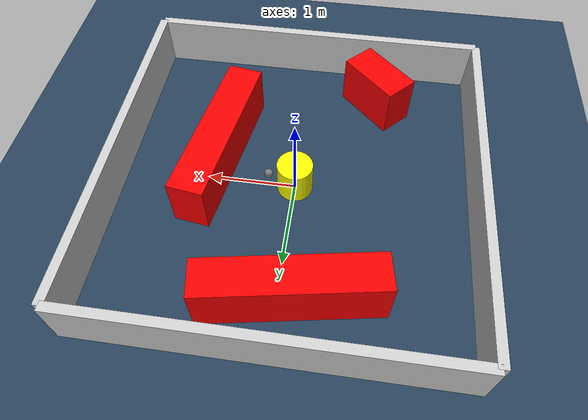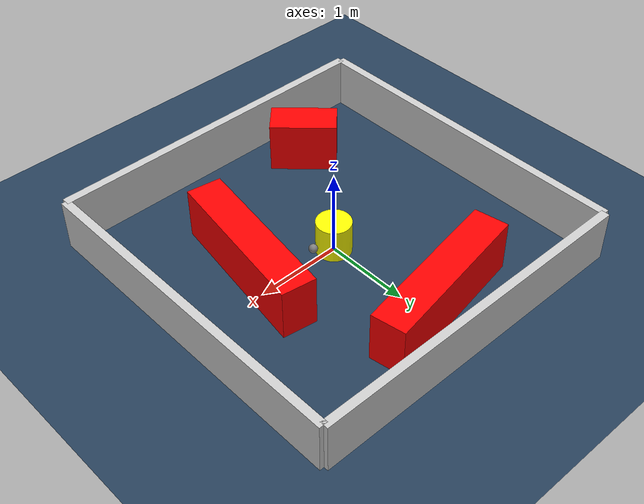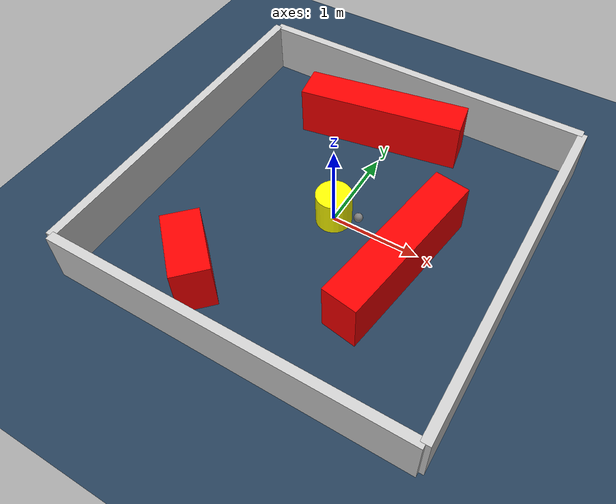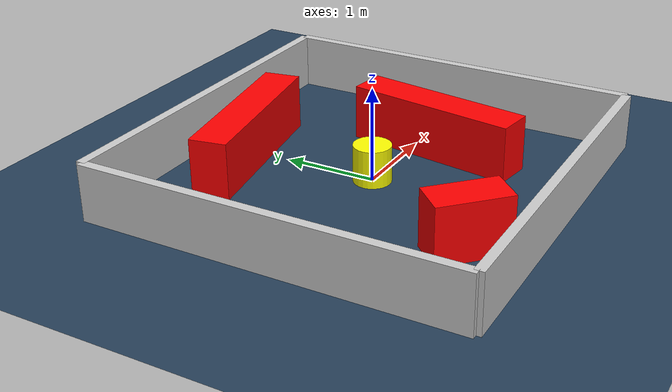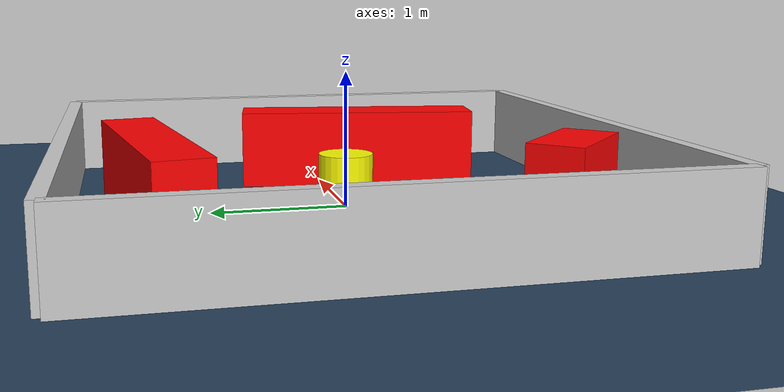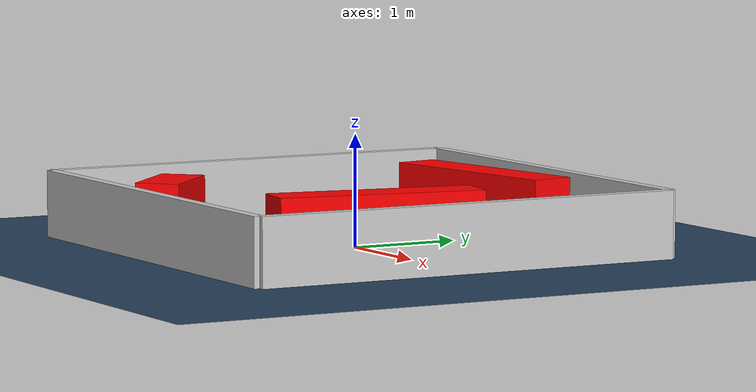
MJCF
<?xml version="1.0" ?>
<mujoco model="generated_environment">
  <option timestep="0.01" integrator="RK4" cone="elliptic"/>
  <default>
    <geom density="1"/>
  </default>
  <asset>
    <texture builtin="gradient" height="3072" rgb1="0.3 0.5 0.7" rgb2="0 0 0" type="skybox" width="512"/>
    <texture builtin="checker" height="300" mark="edge" markrgb="0.8 0.8 0.8" name="groundplane" rgb1="0.2 0.3 0.4" rgb2="0.1 0.2 0.3" type="2d" width="300"/>
    <material name="groundplane" reflectance="0.2" texrepeat="5 5" texture="groundplane" texuniform="true"/>
    <material name="robot" rgba="0.0 1.0 0.0 1"/>
  </asset>
  <worldbody>
    <light dir="0 0 -1" directional="true" pos="0 0 1.5"/>
    <geom condim="4" friction="1.0 0.005 0.001" material="groundplane" name="floor" size="0 0 0.05" type="plane"/>
    <body name="walls">
      <geom name="wall_1" condim="4" pos="-2.0 0.0 0.3" rgba="0.800000011920929 0.800000011920929 0.800000011920929 1.0" size="0.05 2.0 0.3" type="box"/>
      <geom name="wall_2" condim="4" pos="2.0 0.0 0.3" rgba="0.800000011920929 0.800000011920929 0.800000011920929 1.0" size="0.05 2.0 0.3" type="box"/>
      <geom name="wall_3" condim="4" pos="0.0 -2.0 0.3" rgba="0.800000011920929 0.800000011920929 0.800000011920929 1.0" size="2.0 0.05 0.3" type="box"/>
      <geom name="wall_4" condim="4" pos="0.0 2.0 0.3" rgba="0.800000011920929 0.800000011920929 0.800000011920929 1.0" size="2.0 0.05 0.3" type="box"/>
    </body>
    <body name="robot">
      <joint name="joint_x" type="slide" pos="0 0 0" axis="1 0 0"/>
      <joint name="joint_y" type="slide" pos="0 0 0" axis="0 1 0"/>
      <geom name="robot" type="sphere" pos="0.3 0.0 0.2" size="0.05" mass="5." friction="1.0 0.005 0.0001" condim="4" rgba="0.5 0.5 0.5 1.0"/>
      <site name="sensor_ball"/>
    </body>
    <body name="obstacle_movable_1">
      <geom name="obstacle_movable_1" condim="4" pos="0.0 0.0 0.2" euler="0 0 0.0" friction="1.0 0.005 0.001" rgba="1.0 1.0 0.0 1.0" size="0.2 0.2 0.0" type="cylinder" mass="0.1"/>
      <joint type="free"/>
    </body>
    <body name="obstacle_2_static">
      <geom name="obstacle_2_static" condim="4" pos="0.9095309173856774 -0.2962744463915161 0.3" euler="0 0 261.3304646129487" friction="1.0 0.005 0.001" rgba="1 0 0 1" size="0.9372512545184757 0.2 0.3" type="box"/>
    </body>
    <body name="obstacle_3_static">
      <geom name="obstacle_3_static" condim="4" pos="-0.834196204810299 -1.4002965529289704 0.3" euler="0 0 315.840374639141" friction="1.0 0.005 0.001" rgba="1 0 0 1" size="0.3855732423815015 0.2 0.3" type="box"/>
    </body>
    <body name="obstacle_4_static">
      <geom name="obstacle_4_static" condim="4" pos="-0.1527805331807216 1.3956809420442753 0.3" euler="0 0 9.96852906774329" friction="1.0 0.005 0.001" rgba="1 0 0 1" size="0.94600123342174 0.2 0.3" type="box"/>
    </body>
  </worldbody>
  <actuator>
    <motor name="actuator_x" joint="joint_x" gear="1" ctrlrange="-1 1"/>
    <motor name="actuator_y" joint="joint_y" gear="1" ctrlrange="-1 1"/>
  </actuator>
</mujoco>
